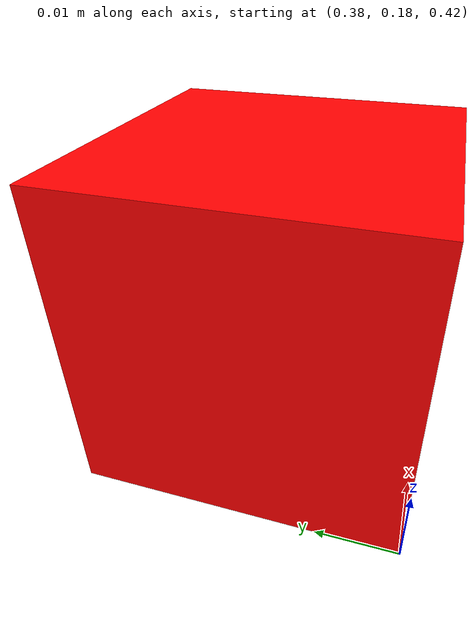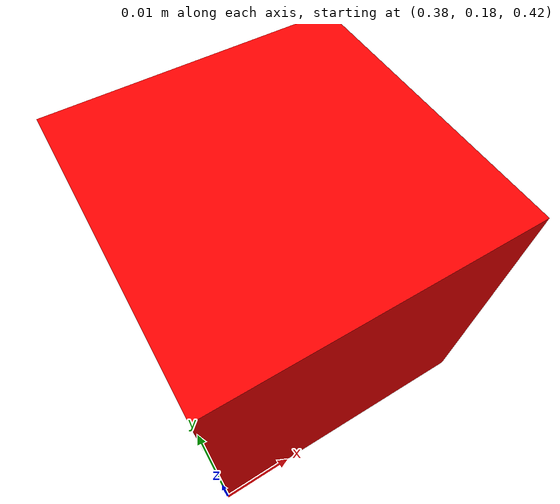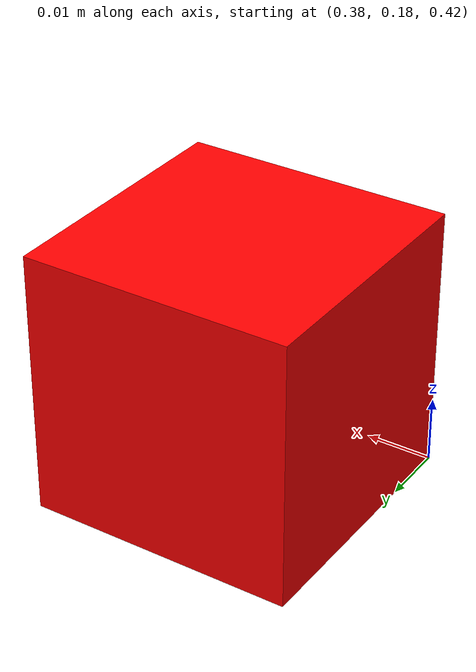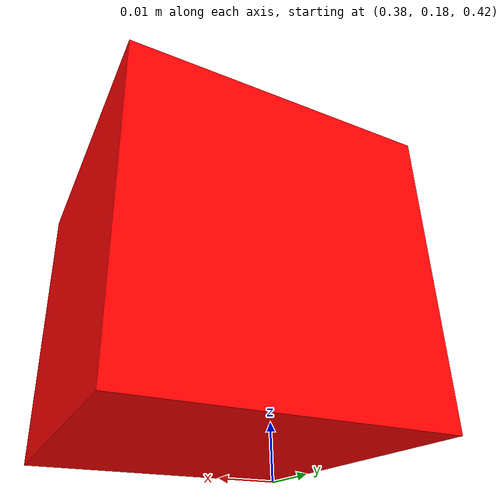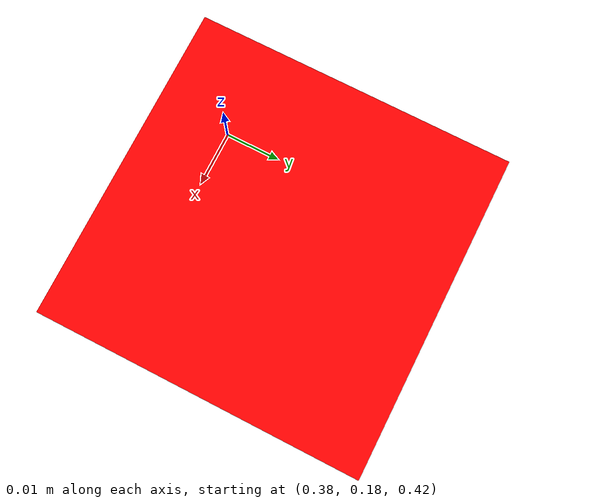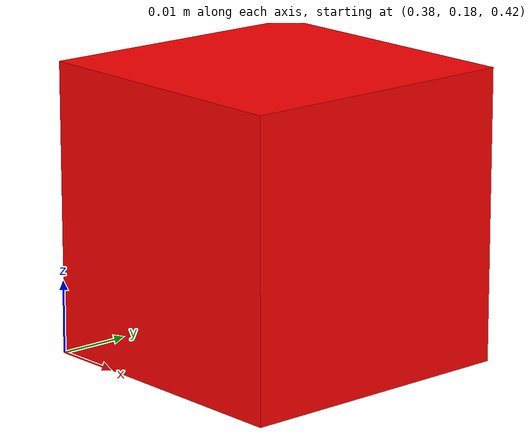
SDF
<sdf version="1.6">
  <model name="cube">
    <pose>0.4 0.2 0.44 0 0 0</pose> <!-- x y z roll pitch yaw -->
    <link name="link">
      <pose>0 0 0 0 0 0</pose>
      <collision name="collision">
        <geometry>
          <box>
            <size>0.04 0.04 0.04</size>
          </box>
        </geometry>
      </collision>
      <visual name="visual">
        <geometry>
          <box>
            <size>0.04 0.04 0.04</size>
          </box>
        </geometry>
        <material>
          <ambient>1 0 0 1</ambient>
          <diffuse>1 0 0 1</diffuse>
        </material>
      </visual>
      <inertial>
        <mass>0.2</mass>
        <inertia>
          <ixx>0.00033</ixx>
          <iyy>0.00033</iyy>
          <izz>0.00033</izz>
        </inertia>
      </inertial>
    </link>
  </model>
</sdf>
